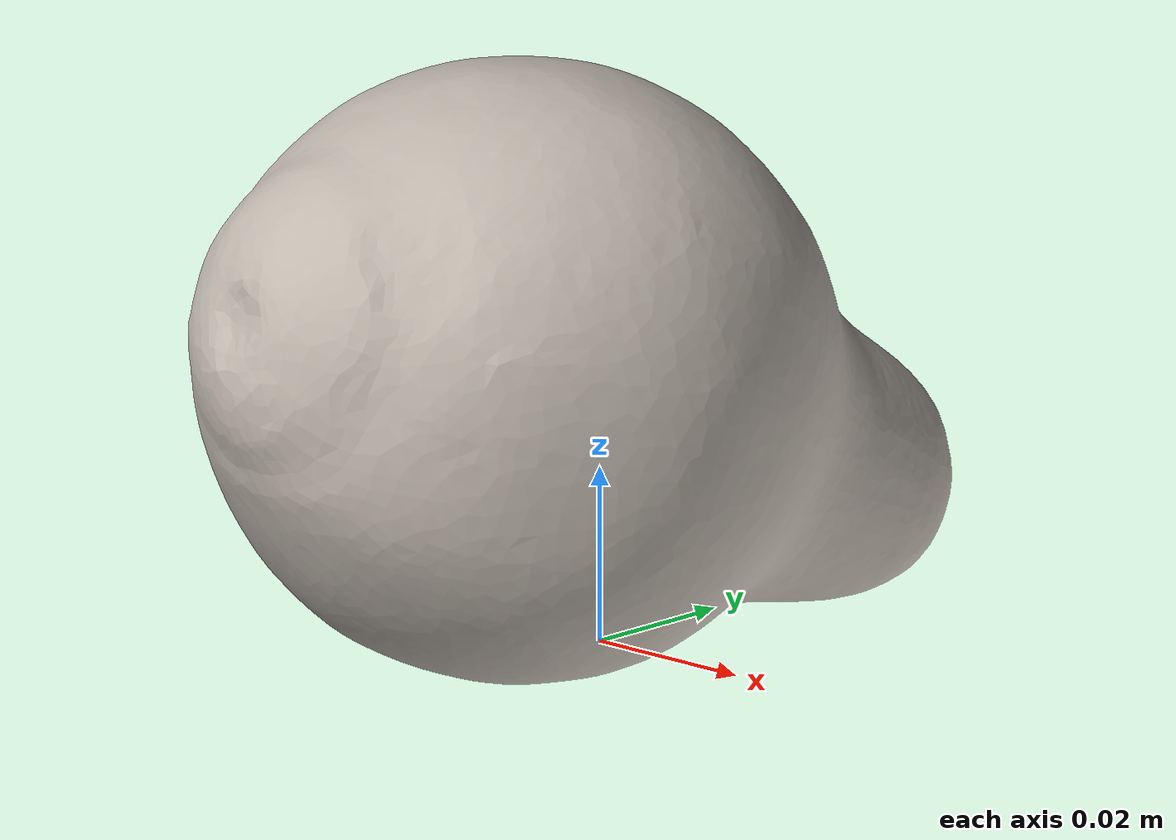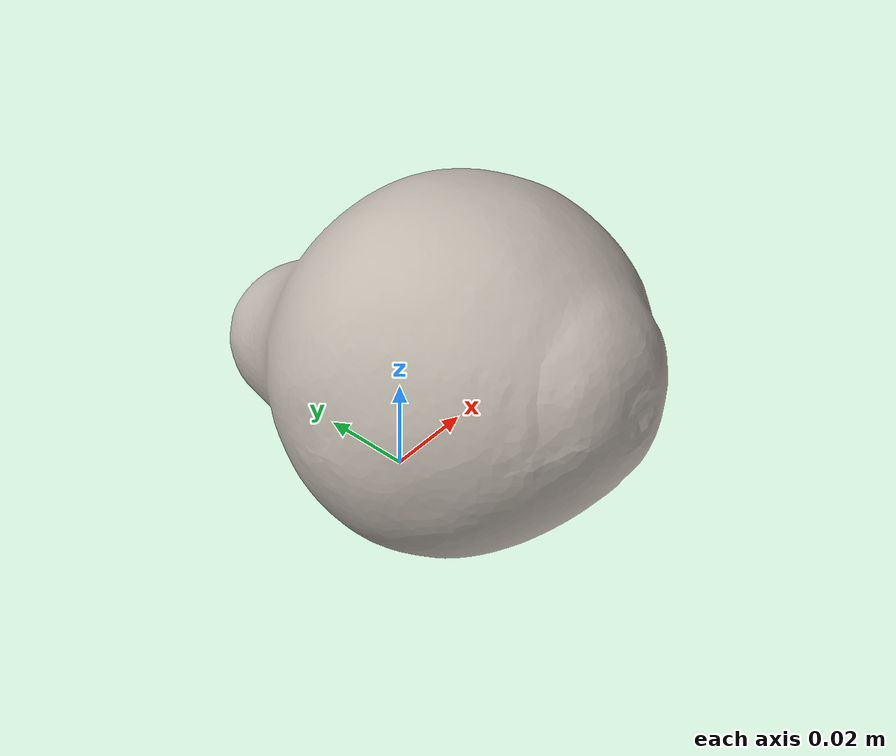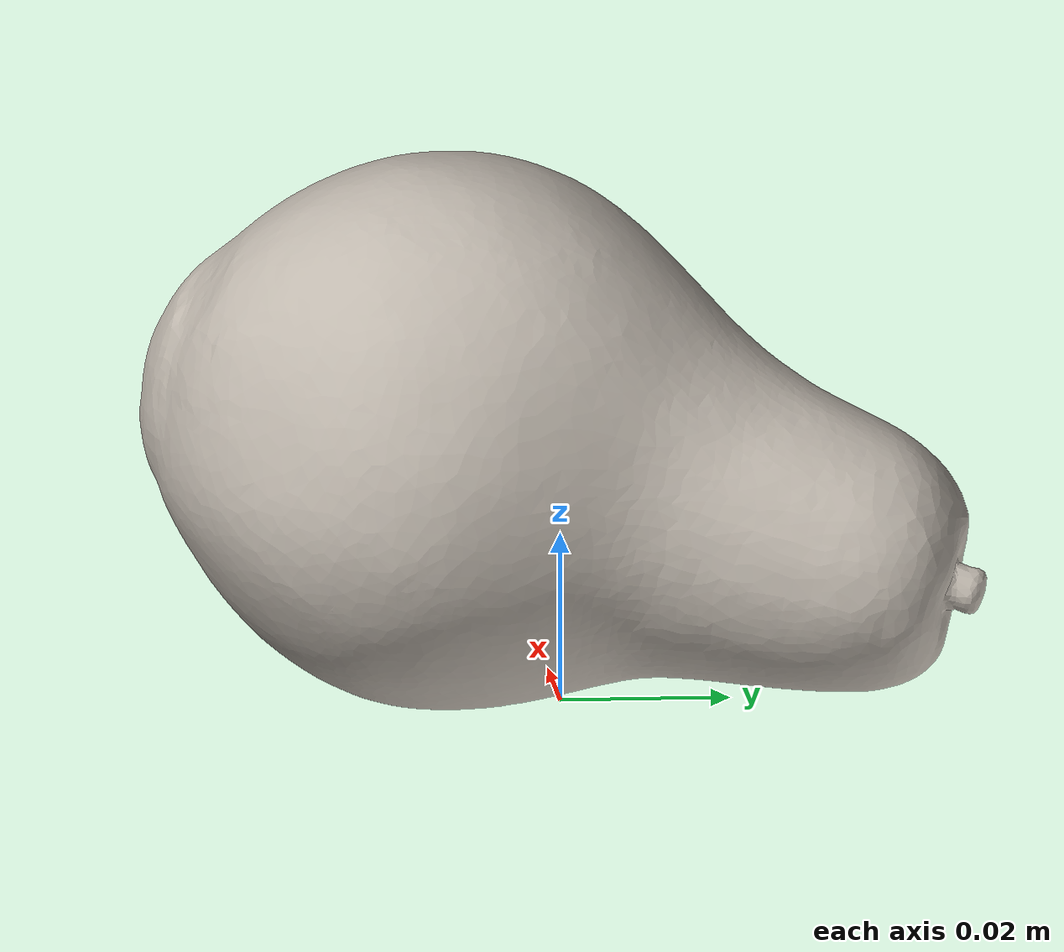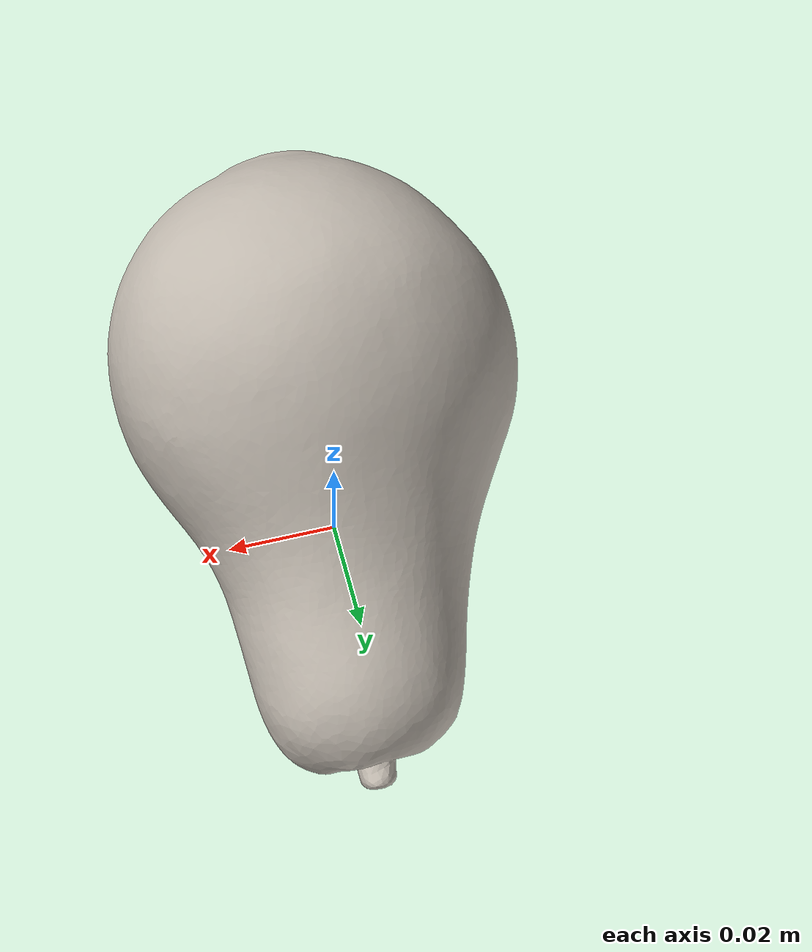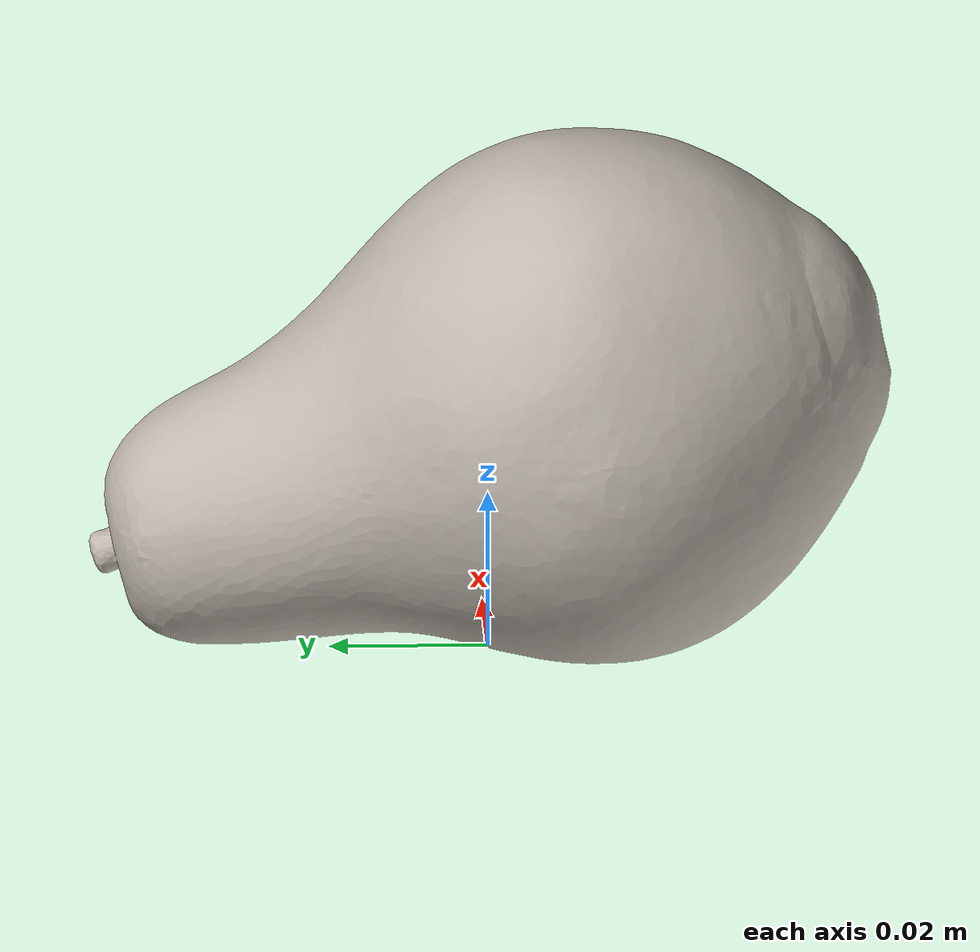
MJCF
<mujoco model="pear">
  <compiler angle="radian" meshdir="." texturedir="."/>
  <asset>
    <mesh name="pear_mesh" file="pear.obj" maxhullvert="64"/>
    <texture name="pear_tex" type="2d" file="pear.png"/>
    <material name="pear_mat" texture="pear_tex" specular="0.25" shininess="0.3"/>
  </asset>
  <worldbody>
    <body name="pear" pos="0 0 0">
      <inertial pos="0.00077739 -0.00691714 0.0302189" quat="0.34261 0.206918 -0.538898 0.74121" mass="0.18" diaginertia="0.000122414 0.000119955 7.2298e-05"/>
      <site name="pear_center" pos="0 0 0" size="0.005" rgba="0 0 0 0"/>
      <geom name="pear_vis0" type="mesh" mesh="pear_mesh" pos="0.03332 -0.0179945 0.000179" material="pear_mat" group="2" contype="0" conaffinity="0"/>
      <geom name="pear_col1" type="mesh" mesh="pear_mesh" pos="0.03332 -0.0179945 0.000179" rgba="0.5 0.5 0.5 0.3" group="3" condim="6" friction="1 0.02 0.004"/>
    </body>
  </worldbody>
</mujoco>
